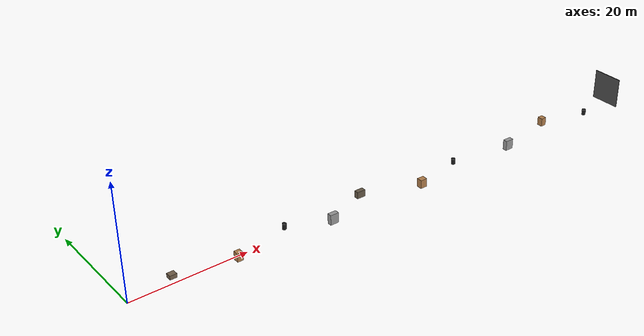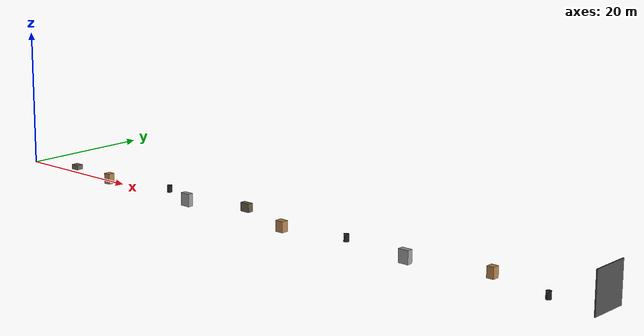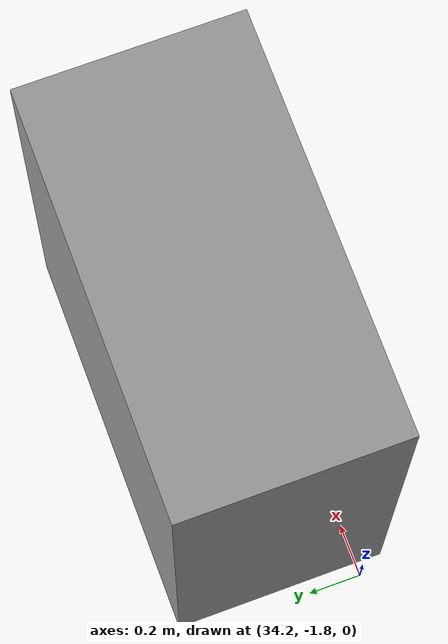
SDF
<sdf version="1.7">
 <world name="default">
  <light name="overhead_sun" type="directional">
   <cast_shadows>0</cast_shadows>
   <pose>50 0 10 0 -0 0</pose>
   <diffuse>0.35 0.32 0.28 1</diffuse>
   <specular>0.05 0.05 0.05 1</specular>
   <attenuation>
    <range>200</range>
    <constant>0.9</constant>
    <linear>0.01</linear>
    <quadratic>0.001</quadratic>
   </attenuation>
   <direction>0 0 -1</direction>
  </light>
  <light name="strip_light_1" type="point">
   <pose>10 0 4.5 0 0 0</pose>
   <diffuse>0.9 0.9 0.8 1</diffuse>
   <specular>0.1 0.1 0.1 1</specular>
   <attenuation>
    <range>25</range>
    <constant>0.5</constant>
    <linear>0.05</linear>
    <quadratic>0.01</quadratic>
   </attenuation>
  </light>
  <light name="strip_light_2" type="point">
   <pose>30 0 4.5 0 0 0</pose>
   <diffuse>0.9 0.9 0.8 1</diffuse>
   <specular>0.1 0.1 0.1 1</specular>
   <attenuation>
    <range>25</range>
    <constant>0.5</constant>
    <linear>0.05</linear>
    <quadratic>0.01</quadratic>
   </attenuation>
  </light>
  <light name="strip_light_3" type="point">
   <pose>50 0 4.5 0 0 0</pose>
   <diffuse>0.9 0.9 0.8 1</diffuse>
   <specular>0.1 0.1 0.1 1</specular>
   <attenuation>
    <range>25</range>
    <constant>0.5</constant>
    <linear>0.05</linear>
    <quadratic>0.01</quadratic>
   </attenuation>
  </light>
  <light name="strip_light_4" type="point">
   <pose>70 0 4.5 0 0 0</pose>
   <diffuse>0.9 0.9 0.8 1</diffuse>
   <specular>0.1 0.1 0.1 1</specular>
   <attenuation>
    <range>25</range>
    <constant>0.5</constant>
    <linear>0.05</linear>
    <quadratic>0.01</quadratic>
   </attenuation>
  </light>
  <light name="strip_light_5" type="point">
   <pose>90 0 4.5 0 0 0</pose>
   <diffuse>0.9 0.9 0.8 1</diffuse>
   <specular>0.1 0.1 0.1 1</specular>
   <attenuation>
    <range>25</range>
    <constant>0.5</constant>
    <linear>0.05</linear>
    <quadratic>0.01</quadratic>
   </attenuation>
  </light>
  <gravity>0 0 -9.8</gravity>
  <magnetic_field>6e-06 2.3e-05 -4.2e-05</magnetic_field>
  <atmosphere type="adiabatic"/>
  <physics type="ode">
   <max_step_size>0.001</max_step_size>
   <real_time_factor>1</real_time_factor>
   <real_time_update_rate>1000</real_time_update_rate>
  </physics>
  <scene>
   <ambient>0.25 0.23 0.20 1</ambient>
   <background>0.05 0.05 0.05 1</background>
   <shadows>1</shadows>
  </scene>
  <model name="tunnel_end_wall">
   <pose>100 0 0 0 0 0</pose>
   <static>true</static>
   <link name="Wall_0">
    <collision name="Wall_0_Collision">
     <geometry><box><size>5.5 0.15 5.5</size></box></geometry>
     <pose>0 0 2.75 0 0 0</pose>
    </collision>
    <visual name="Wall_0_Visual">
     <pose>0 0 2.75 0 0 0</pose>
     <geometry><box><size>5.5 0.15 5.5</size></box></geometry>
     <material>
      <script><uri>file://media/materials/scripts/gazebo.material</uri><name>Gazebo/DarkGrey</name></script>
     </material>
    </visual>
    <pose>0 0 0 0 0 1.5708</pose>
   </link>
  </model>
  <model name="ground_plane">
   <static>true</static>
   <link name="link">
    <collision name="collision">
     <pose>50 0 -0.01 0 0 0</pose>
     <geometry><box><size>110 6 0.02</size></box></geometry>
    </collision>
   </link>
  </model>
  <model name="debris_01">
   <pose>8.0 1.5 0 0 0 0</pose>
   <static>true</static>
   <link name="l">
    <collision name="c">
     <geometry><box><size>1.2 1.0 0.7</size></box></geometry>
     <pose>0 0 0.35 0 0 0</pose>
    </collision>
    <visual name="v">
     <pose>0 0 0.35 0 0 0</pose>
     <geometry><box><size>1.2 1.0 0.7</size></box></geometry>
     <material>
      <script><uri>file://media/materials/scripts/gazebo.material</uri><name>Gazebo/Rocky</name></script>
      <ambient>0.45 0.38 0.30 1</ambient>
     </material>
    </visual>
   </link>
  </model>
  <model name="crate_03">
   <pose>18.0 -0.8 0 0 0 0</pose>
   <static>true</static>
   <link name="l">
    <collision name="c">
     <geometry><box><size>1.0 1.0 1.5</size></box></geometry>
     <pose>0 0 0.75 0 0 0</pose>
    </collision>
    <visual name="v">
     <pose>0 0 0.75 0 0 0</pose>
     <geometry><box><size>1.0 1.0 1.5</size></box></geometry>
     <material>
      <script><uri>file://media/materials/scripts/gazebo.material</uri><name>Gazebo/WoodPallet</name></script>
      <ambient>0.55 0.45 0.25 1</ambient>
     </material>
    </visual>
   </link>
  </model>
  <model name="barrel_05">
   <pose>28.0 1.8 0 0 0 0</pose>
   <static>true</static>
   <link name="l">
    <collision name="c">
     <geometry><box><size>0.7 0.7 1.0</size></box></geometry>
     <pose>0 0 0.5 0 0 0</pose>
    </collision>
    <visual name="v">
     <pose>0 0 0.5 0 0 0</pose>
     <geometry><cylinder><radius>0.35</radius><length>1.0</length></cylinder></geometry>
     <material>
      <script><uri>file://media/materials/scripts/gazebo.material</uri><name>Gazebo/FlatBlack</name></script>
      <ambient>0.2 0.2 0.2 1</ambient>
     </material>
    </visual>
   </link>
  </model>
  <model name="equipment_07">
   <pose>35.0 -1.5 0 0 0 0</pose>
   <static>true</static>
   <link name="l">
    <collision name="c">
     <geometry><box><size>1.5 0.8 1.8</size></box></geometry>
     <pose>0 0 0.9 0 0 0</pose>
    </collision>
    <visual name="v">
     <pose>0 0 0.9 0 0 0</pose>
     <geometry><box><size>1.5 0.8 1.8</size></box></geometry>
     <material>
      <script><uri>file://media/materials/scripts/gazebo.material</uri><name>Gazebo/Grey</name></script>
      <ambient>0.5 0.5 0.5 1</ambient>
     </material>
    </visual>
   </link>
  </model>
  <model name="rubble_09">
   <pose>43.0 2.0 0 0 0 0</pose>
   <static>true</static>
   <link name="l">
    <collision name="c">
     <geometry><box><size>1.5 0.8 1.2</size></box></geometry>
     <pose>0 0 0.6 0 0 0</pose>
    </collision>
    <visual name="v">
     <pose>0 0 0.6 0 0 0</pose>
     <geometry><box><size>1.5 0.8 1.2</size></box></geometry>
     <material>
      <script><uri>file://media/materials/scripts/gazebo.material</uri><name>Gazebo/Rocky</name></script>
      <ambient>0.40 0.35 0.28 1</ambient>
     </material>
    </visual>
   </link>
  </model>
  <model name="crate_11">
   <pose>53.0 -1.8 0 0 0 0</pose>
   <static>true</static>
   <link name="l">
    <collision name="c">
     <geometry><box><size>1.2 1.0 1.5</size></box></geometry>
     <pose>0 0 0.75 0 0 0</pose>
    </collision>
    <visual name="v">
     <pose>0 0 0.75 0 0 0</pose>
     <geometry><box><size>1.2 1.0 1.5</size></box></geometry>
     <material>
      <script><uri>file://media/materials/scripts/gazebo.material</uri><name>Gazebo/WoodPallet</name></script>
      <ambient>0.55 0.45 0.25 1</ambient>
     </material>
    </visual>
   </link>
  </model>
  <model name="barrel_13">
   <pose>62.0 0.5 0 0 0 0</pose>
   <static>true</static>
   <link name="l">
    <collision name="c">
     <geometry><box><size>0.7 0.7 1.0</size></box></geometry>
     <pose>0 0 0.5 0 0 0</pose>
    </collision>
    <visual name="v">
     <pose>0 0 0.5 0 0 0</pose>
     <geometry><cylinder><radius>0.35</radius><length>1.0</length></cylinder></geometry>
     <material>
      <script><uri>file://media/materials/scripts/gazebo.material</uri><name>Gazebo/FlatBlack</name></script>
      <ambient>0.2 0.2 0.2 1</ambient>
     </material>
    </visual>
   </link>
  </model>
  <model name="equipment_15">
   <pose>73.0 -1.5 0 0 0 0</pose>
   <static>true</static>
   <link name="l">
    <collision name="c">
     <geometry><box><size>1.5 0.8 1.8</size></box></geometry>
     <pose>0 0 0.9 0 0 0</pose>
    </collision>
    <visual name="v">
     <pose>0 0 0.9 0 0 0</pose>
     <geometry><box><size>1.5 0.8 1.8</size></box></geometry>
     <material>
      <script><uri>file://media/materials/scripts/gazebo.material</uri><name>Gazebo/Grey</name></script>
      <ambient>0.5 0.5 0.5 1</ambient>
     </material>
    </visual>
   </link>
  </model>
  <model name="crate_17">
   <pose>84.0 1.0 0 0 0 0</pose>
   <static>true</static>
   <link name="l">
    <collision name="c">
     <geometry><box><size>1.0 1.0 1.5</size></box></geometry>
     <pose>0 0 0.75 0 0 0</pose>
    </collision>
    <visual name="v">
     <pose>0 0 0.75 0 0 0</pose>
     <geometry><box><size>1.0 1.0 1.5</size></box></geometry>
     <material>
      <script><uri>file://media/materials/scripts/gazebo.material</uri><name>Gazebo/WoodPallet</name></script>
      <ambient>0.55 0.45 0.25 1</ambient>
     </material>
    </visual>
   </link>
  </model>
  <model name="barrel_19">
   <pose>93.0 -1.0 0 0 0 0</pose>
   <static>true</static>
   <link name="l">
    <collision name="c">
     <geometry><box><size>0.7 0.7 1.0</size></box></geometry>
     <pose>0 0 0.5 0 0 0</pose>
    </collision>
    <visual name="v">
     <pose>0 0 0.5 0 0 0</pose>
     <geometry><cylinder><radius>0.35</radius><length>1.0</length></cylinder></geometry>
     <material>
      <script><uri>file://media/materials/scripts/gazebo.material</uri><name>Gazebo/FlatBlack</name></script>
      <ambient>0.2 0.2 0.2 1</ambient>
     </material>
    </visual>
   </link>
  </model>
 </world>
</sdf>
